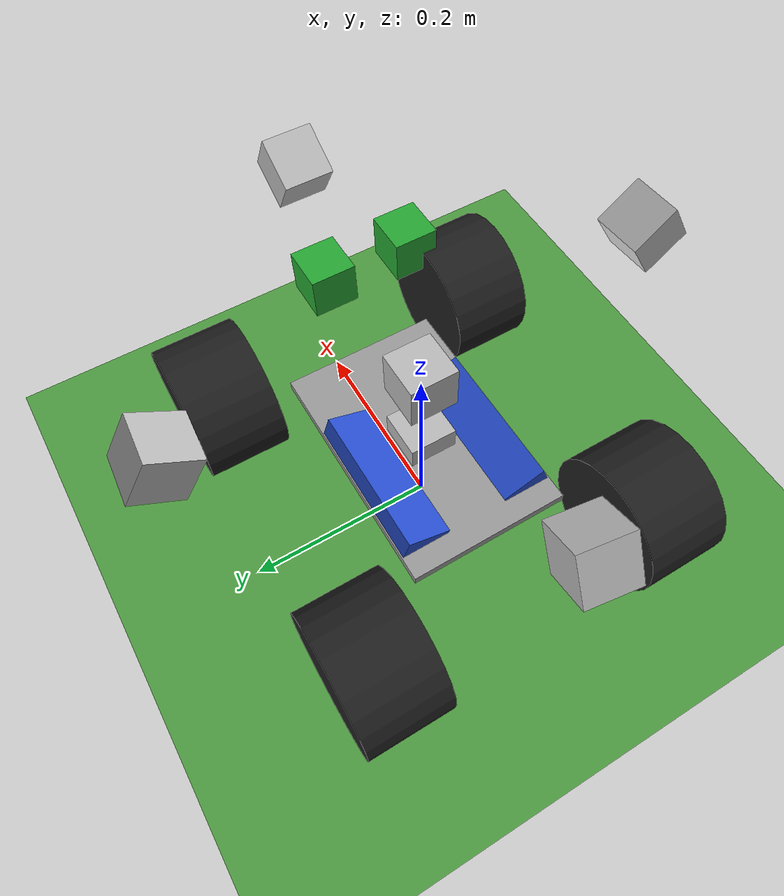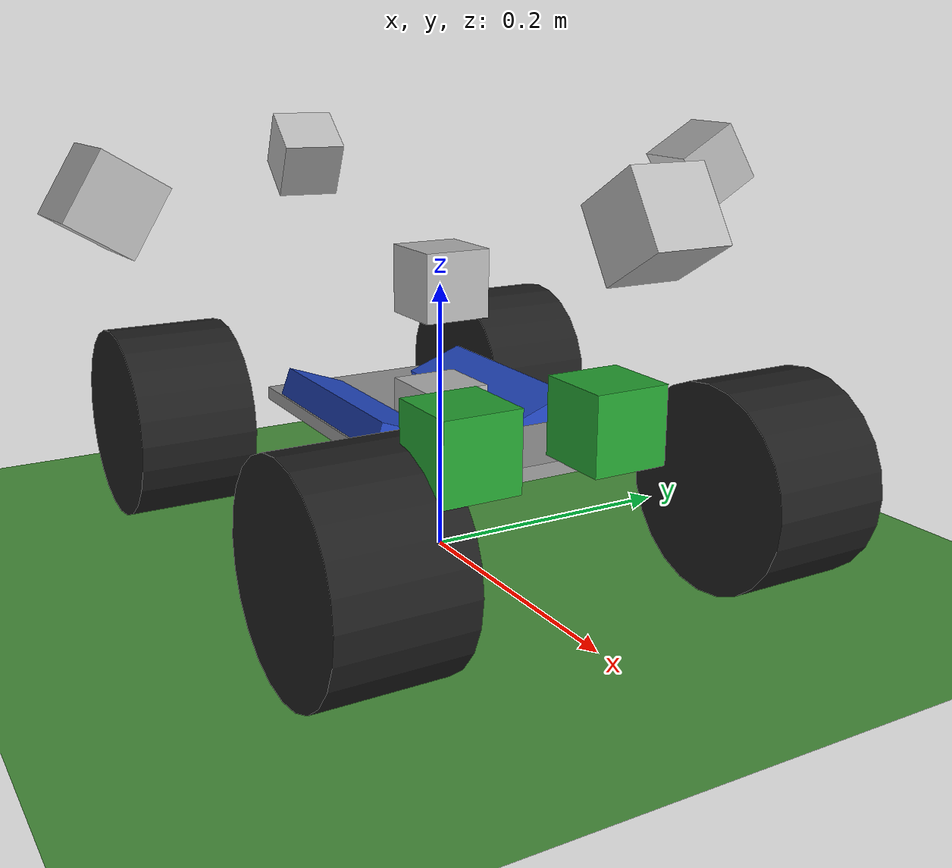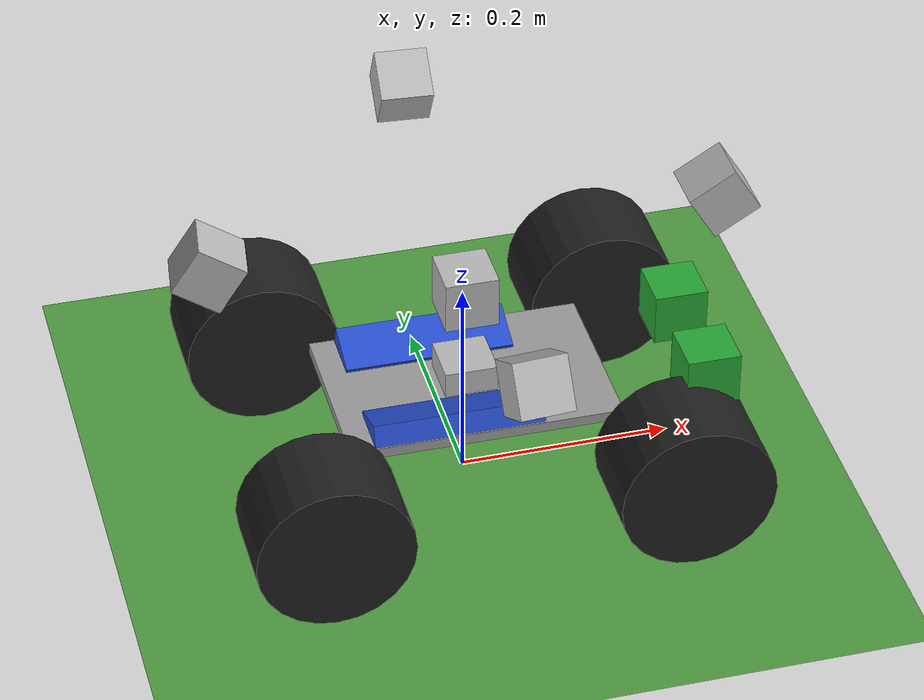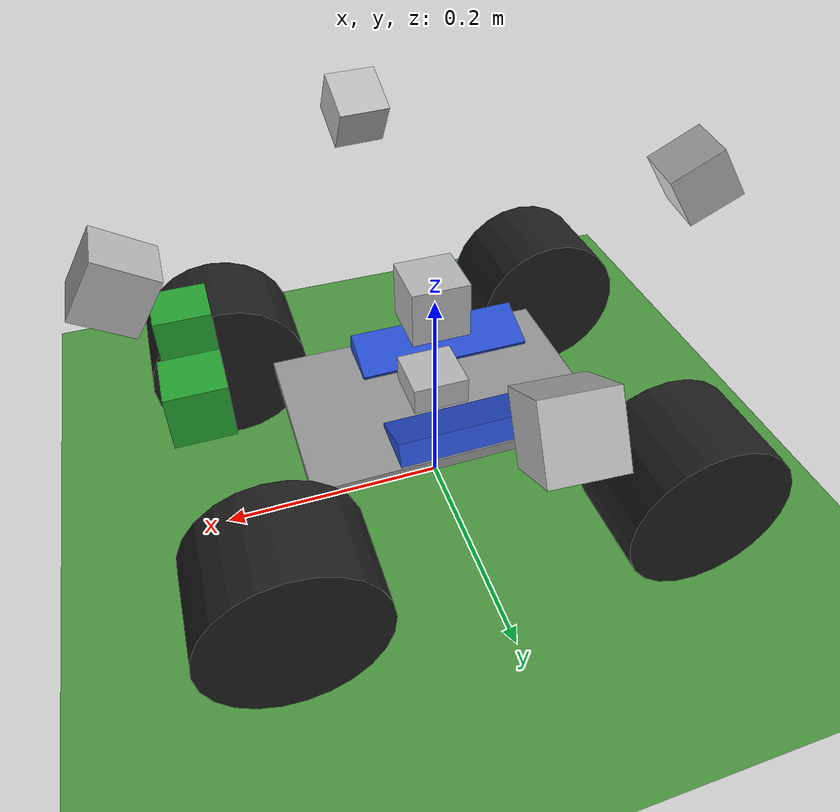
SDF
<sdf version="1.6">
 <world name="racecar_tunnel">
  <light name="sun" type="directional">
   <pose>0 0 10 0 -0 0</pose>
   <diffuse>0.8 0.8 0.8 1</diffuse>
   <specular>0.1 0.1 0.1 1</specular>
   <attenuation>
    <range>1000</range>
    <constant>0.9</constant>
    <linear>0.01</linear>
    <quadratic>0.001</quadratic>
   </attenuation>
   <direction>-0.5 0.5 -1</direction>
  </light>
  <model name="ground_plane">
   <static>1</static>
   <link name="link">
    <collision name="collision">
     <geometry><plane><normal>0 0 1</normal><size>150 150</size></plane></geometry>
     <surface><friction><ode><mu>100</mu><mu2>50</mu2></ode></friction></surface>
    </collision>
    <visual name="visual">
     <cast_shadows>0</cast_shadows>
     <geometry><plane><normal>0 0 1</normal><size>150 150</size></plane></geometry>
     <material>
      <script><uri>file://media/materials/scripts/gazebo.material</uri><name>Gazebo/Grass</name></script>
     </material>
    </visual>
   </link>
  </model>
  <gravity>0 0 -9.8</gravity>
  <magnetic_field>6e-06 2.3e-05 -4.2e-05</magnetic_field>
  <atmosphere type="adiabatic"/>
  <physics name="default_physics" default="0" type="ode">
   <max_step_size>0.001</max_step_size>
   <real_time_factor>1</real_time_factor>
   <real_time_update_rate>1000</real_time_update_rate>
  </physics>
  <scene><ambient>0.4 0.4 0.4 1</ambient><background>0.7 0.7 0.7 1</background><shadows>1</shadows></scene>
  <spherical_coordinates>
   <surface_model>EARTH_WGS84</surface_model>
   <latitude_deg>0</latitude_deg>
   <longitude_deg>0</longitude_deg>
   <elevation>0</elevation>
   <heading_deg>0</heading_deg>
  </spherical_coordinates>
  <model name="roguetwo">
   <link name="base_link">
    <inertial>
     <pose>0.003531 -0.002382 0.001711 0 -0 0</pose>
     <mass>4.199</mass>
     <inertia>
      <ixx>0.0148708</ixx>
      <ixy>0.00196469</ixy>
      <ixz>-0.00196158</ixz>
      <iyy>0.0300503</iyy>
      <iyz>0.000482895</iyz>
      <izz>0.0394467</izz>
     </inertia>
    </inertial>
    <collision name="base_link_fixed_joint_lump__chassis_collision">
     <pose>0 0 -0.005 0 -0 0</pose>
     <geometry><box><size>0.258 0.168 0.01</size></box></geometry>
    </collision>
    <collision name="base_link_fixed_joint_lump__camera_stereo_left_collision_1">
     <pose>0.2 0 0.05 0 -0 0</pose>
     <geometry><box><size>0.05 0.05 0.05</size></box></geometry>
    </collision>
    <collision name="base_link_fixed_joint_lump__camera_stereo_right_collision_2">
     <pose>0.2 -0.1 0.05 0 -0 0</pose>
     <geometry><box><size>0.05 0.05 0.05</size></box></geometry>
    </collision>
    <collision name="base_link_fixed_joint_lump__left_battery_collision_3">
     <pose>-0.025 0.057319 0.00052 0.349066 -0 0</pose>
     <geometry><box><size>0.16 0.047 0.024</size></box></geometry>
    </collision>
    <collision name="base_link_fixed_joint_lump__right_battery_collision_4">
     <pose>-0.025 -0.057319 0.00052 -0.349066 0 0</pose>
     <geometry><box><size>0.16 0.047 0.024</size></box></geometry>
    </collision>
    <collision name="base_link_fixed_joint_lump__gps_collision_5">
     <pose>0 0 0.1 0 -0 0</pose>
     <geometry><box><size>0.05 0.05 0.05</size></box></geometry>
    </collision>
    <collision name="base_link_fixed_joint_lump__imu_collision_6">
     <geometry><box><size>0.05 0.05 0.05</size></box></geometry>
    </collision>
    <collision name="base_link_fixed_joint_lump__sonar1_link_collision_7">
     <pose>0.25 0 0.15 0 -0.55 0</pose>
     <geometry><box><size>0.01 0.01 0.01</size></box></geometry>
    </collision>
    <collision name="base_link_fixed_joint_lump__sonar2_link_collision_8">
     <pose>0 0.25 0.15 0 -0.55 1.5</pose>
     <geometry><box><size>0.01 0.01 0.01</size></box></geometry>
    </collision>
    <collision name="base_link_fixed_joint_lump__sonar3_link_collision_9">
     <pose>0 -0.25 0.15 0 -0.55 -1.5</pose>
     <geometry><box><size>0.01 0.01 0.01</size></box></geometry>
    </collision>
    <collision name="base_link_fixed_joint_lump__sonar4_link_collision_10">
     <pose>-0.25 0 0.15 0 -0.55 3</pose>
     <geometry><box><size>0.01 0.01 0.01</size></box></geometry>
    </collision>
    <visual name="base_link_visual">
     <geometry><box><size>0.01 0.01 0.01</size></box></geometry>
     <material>
      <script><name>Gazebo/Grey</name><uri>file://media/materials/scripts/gazebo.material</uri></script>
     </material>
    </visual>
    <visual name="base_link_fixed_joint_lump__chassis_visual_1">
     <pose>0 0 -0.005 0 -0 0</pose>
     <geometry><box><size>0.258 0.168 0.01</size></box></geometry>
     <material>
      <script><name>Gazebo/Grey</name><uri>file://media/materials/scripts/gazebo.material</uri></script>
     </material>
    </visual>
    <visual name="base_link_fixed_joint_lump__camera_stereo_left_visual_2">
     <pose>0.2 0 0.05 0 -0 0</pose>
     <geometry><box><size>0.05 0.05 0.05</size></box></geometry>
     <material>
      <script><name>Gazebo/Green</name><uri>file://media/materials/scripts/gazebo.material</uri></script>
     </material>
    </visual>
    <visual name="base_link_fixed_joint_lump__camera_stereo_right_visual_3">
     <pose>0.2 -0.1 0.05 0 -0 0</pose>
     <geometry><box><size>0.05 0.05 0.05</size></box></geometry>
     <material>
      <script><name>Gazebo/Green</name><uri>file://media/materials/scripts/gazebo.material</uri></script>
     </material>
    </visual>
    <visual name="base_link_fixed_joint_lump__left_battery_visual_4">
     <pose>-0.025 0.057319 0.00052 0.349066 -0 0</pose>
     <geometry><box><size>0.16 0.047 0.024</size></box></geometry>
     <material>
      <script><name>Gazebo/Blue</name><uri>file://media/materials/scripts/gazebo.material</uri></script>
     </material>
    </visual>
    <visual name="base_link_fixed_joint_lump__right_battery_visual_5">
     <pose>-0.025 -0.057319 0.00052 -0.349066 0 0</pose>
     <geometry><box><size>0.16 0.047 0.024</size></box></geometry>
     <material>
      <script><name>Gazebo/Blue</name><uri>file://media/materials/scripts/gazebo.material</uri></script>
     </material>
    </visual>
    <visual name="base_link_fixed_joint_lump__gps_visual_6">
     <pose>0 0 0.1 0 -0 0</pose>
     <geometry><box><size>0.05 0.05 0.05</size></box></geometry>
    </visual>
    <visual name="base_link_fixed_joint_lump__imu_visual_7">
     <geometry><box><size>0.05 0.05 0.05</size></box></geometry>
    </visual>
    <visual name="base_link_fixed_joint_lump__sonar1_link_visual_8">
     <pose>0.236933 0 0.171313 0 -0.55 0</pose>
     <geometry><box><size>0.05 0.05 0.05</size></box></geometry>
     <material><script><uri>__default__</uri><name>__default__</name></script></material>
    </visual>
    <visual name="base_link_fixed_joint_lump__sonar2_link_visual_9">
     <pose>-0.000924 0.236966 0.171313 0 -0.55 1.5</pose>
     <geometry><box><size>0.05 0.05 0.05</size></box></geometry>
     <material><script><uri>__default__</uri><name>__default__</name></script></material>
    </visual>
    <visual name="base_link_fixed_joint_lump__sonar3_link_visual_10">
     <pose>-0.000924 -0.236966 0.171313 0 -0.55 -1.5</pose>
     <geometry><box><size>0.05 0.05 0.05</size></box></geometry>
     <material><script><uri>__default__</uri><name>__default__</name></script></material>
    </visual>
    <visual name="base_link_fixed_joint_lump__sonar4_link_visual_11">
     <pose>-0.237064 -0.001844 0.171313 0 -0.55 3</pose>
     <geometry><box><size>0.05 0.05 0.05</size></box></geometry>
     <material><script><uri>__default__</uri><name>__default__</name></script></material>
    </visual>
    <sensor name="camera_stereo_left" type="camera">
     <update_rate>30</update_rate>
     <camera name="head">
      <horizontal_fov>1.39626</horizontal_fov>
      <image><width>640</width><height>480</height><format>R8G8B8</format></image>
      <clip><near>0.02</near><far>300</far></clip>
     </camera>
     <plugin name="camera_controller" filename="libgazebo_ros_camera.so">
      <alwaysOn>true</alwaysOn>
      <updateRate>0.0</updateRate>
      <cameraName>rogue_two/camera_stereo_left</cameraName>
      <imageTopicName>image_raw</imageTopicName>
      <cameraInfoTopicName>camera_info</cameraInfoTopicName>
      <frameName>camera</frameName>
      <hackBaseline>0.07</hackBaseline>
      <distortionK1>0.0</distortionK1>
      <distortionK2>0.0</distortionK2>
      <distortionK3>0.0</distortionK3>
      <distortionT1>0.0</distortionT1>
      <distortionT2>0.0</distortionT2>
      <robotNamespace>/</robotNamespace>
     </plugin>
     <pose>0.2 0 0.05 0 -0 0</pose>
    </sensor>
    <sensor name="camera_stereo_right" type="camera">
     <update_rate>30</update_rate>
     <camera name="head">
      <horizontal_fov>1.39626</horizontal_fov>
      <image><width>640</width><height>480</height><format>R8G8B8</format></image>
      <clip><near>0.02</near><far>300</far></clip>
     </camera>
     <plugin name="camera_controller" filename="libgazebo_ros_camera.so">
      <alwaysOn>true</alwaysOn>
      <updateRate>0.0</updateRate>
      <cameraName>rogue_two/camera_stereo_right</cameraName>
      <imageTopicName>image_raw</imageTopicName>
      <cameraInfoTopicName>camera_info</cameraInfoTopicName>
      <frameName>camera</frameName>
      <hackBaseline>0.07</hackBaseline>
      <distortionK1>0.0</distortionK1>
      <distortionK2>0.0</distortionK2>
      <distortionK3>0.0</distortionK3>
      <distortionT1>0.0</distortionT1>
      <distortionT2>0.0</distortionT2>
      <robotNamespace>/</robotNamespace>
     </plugin>
     <pose>0.2 -0.1 0.05 0 -0 0</pose>
    </sensor>
    <sensor name="sonar1" type="ray">
     <always_on>1</always_on>
     <update_rate>10</update_rate>
     <visualize>1</visualize>
     <ray>
      <scan>
       <horizontal>
        <samples>2</samples>
        <resolution>1</resolution>
        <min_angle>-0.5</min_angle>
        <max_angle>0.5</max_angle>
       </horizontal>
       <vertical>
        <samples>2</samples>
        <resolution>1</resolution>
        <min_angle>-0.5</min_angle>
        <max_angle>0.5</max_angle>
       </vertical>
      </scan>
      <range><min>0.02</min><max>4.5</max><resolution>0.01</resolution></range>
     </ray>
     <plugin name="gazebo_ros_sonar1_controller" filename="libhector_gazebo_ros_sonar.so">
      <gaussianNoise>0.005</gaussianNoise>
      <topicName>/sonar_front_distance</topicName>
      <frameId>sonar1_link</frameId>
      <robotNamespace>/</robotNamespace>
     </plugin>
     <pose>0.25 0 0.15 0 -0.55 0</pose>
    </sensor>
    <sensor name="sonar2" type="ray">
     <always_on>1</always_on>
     <update_rate>10</update_rate>
     <visualize>1</visualize>
     <ray>
      <scan>
       <horizontal>
        <samples>2</samples>
        <resolution>1</resolution>
        <min_angle>-0.5</min_angle>
        <max_angle>0.5</max_angle>
       </horizontal>
       <vertical>
        <samples>2</samples>
        <resolution>1</resolution>
        <min_angle>-0.5</min_angle>
        <max_angle>0.5</max_angle>
       </vertical>
      </scan>
      <range><min>0.02</min><max>4.5</max><resolution>0.01</resolution></range>
     </ray>
     <plugin name="gazebo_ros_sonar2_controller" filename="libhector_gazebo_ros_sonar.so">
      <gaussianNoise>0.005</gaussianNoise>
      <topicName>/sonar_left_distance</topicName>
      <bodyName>sonar</bodyName>
      <serviceName>sonar_service</serviceName>
      <frameId>sonar2_link</frameId>
      <robotNamespace>/</robotNamespace>
     </plugin>
     <pose>0 0.25 0.15 0 -0.55 1.5</pose>
    </sensor>
    <sensor name="sonar3" type="ray">
     <always_on>1</always_on>
     <update_rate>10</update_rate>
     <visualize>1</visualize>
     <ray>
      <scan>
       <horizontal>
        <samples>2</samples>
        <resolution>1</resolution>
        <min_angle>-0.5</min_angle>
        <max_angle>0.5</max_angle>
       </horizontal>
       <vertical>
        <samples>2</samples>
        <resolution>1</resolution>
        <min_angle>-0.5</min_angle>
        <max_angle>0.5</max_angle>
       </vertical>
      </scan>
      <range><min>0.02</min><max>4.5</max><resolution>0.01</resolution></range>
     </ray>
     <plugin name="gazebo_ros_sonar3_controller" filename="libhector_gazebo_ros_sonar.so">
      <gaussianNoise>0.005</gaussianNoise>
      <topicName>/sonar_right_distance</topicName>
      <bodyName>sonar</bodyName>
      <serviceName>sonar_service</serviceName>
      <frameId>sonar3_link</frameId>
      <robotNamespace>/</robotNamespace>
     </plugin>
     <pose>0 -0.25 0.15 0 -0.55 -1.5</pose>
    </sensor>
    <sensor name="sonar4" type="ray">
     <always_on>1</always_on>
     <update_rate>10</update_rate>
     <visualize>1</visualize>
     <ray>
      <scan>
       <horizontal>
        <samples>2</samples>
        <resolution>1</resolution>
        <min_angle>-0.5</min_angle>
        <max_angle>0.5</max_angle>
       </horizontal>
       <vertical>
        <samples>2</samples>
        <resolution>1</resolution>
        <min_angle>-0.5</min_angle>
        <max_angle>0.5</max_angle>
       </vertical>
      </scan>
      <range><min>0.02</min><max>4.5</max><resolution>0.01</resolution></range>
     </ray>
     <plugin name="gazebo_ros_sonar4_controller" filename="libhector_gazebo_ros_sonar.so">
      <gaussianNoise>0.005</gaussianNoise>
      <topicName>/sonar_back_distance</topicName>
      <bodyName>sonar</bodyName>
      <serviceName>sonar_service</serviceName>
      <frameId>sonar4_link</frameId>
      <robotNamespace>/</robotNamespace>
     </plugin>
     <pose>-0.25 0 0.15 0 -0.55 3</pose>
    </sensor>
   </link>
   <link name="left_steering_link">
    <pose>0.1675 0.1525 -0.0235 0 -0 0</pose>
    <inertial>
     <mass>0.001</mass>
     <inertia><ixx>0.001</ixx><ixy>0</ixy><ixz>0</ixz><iyy>0.001</iyy><iyz>0</iyz><izz>0.001</izz></inertia>
    </inertial>
   </link>
   <joint name="left_front_shock" type="prismatic">
    <child>left_steering_link</child>
    <parent>base_link</parent>
    <axis>
     <xyz>0 0 -1</xyz>
     <limit><lower>-0.042</lower><upper>0.042</upper><effort>12.5106</effort><velocity>1000</velocity></limit>
     <dynamics><spring_reference>0</spring_reference><spring_stiffness>0</spring_stiffness></dynamics>
     <use_parent_model_frame>1</use_parent_model_frame>
    </axis>
   </joint>
   <link name="left_front_axle_carrier">
    <pose>0.1675 0.1525 -0.0235 0 -0 0</pose>
    <inertial>
     <mass>0.001</mass>
     <inertia><ixx>0.001</ixx><ixy>0</ixy><ixz>0</ixz><iyy>0.001</iyy><iyz>0</iyz><izz>0.001</izz></inertia>
    </inertial>
   </link>
   <joint name="left_steering_joint" type="revolute">
    <child>left_front_axle_carrier</child>
    <parent>left_steering_link</parent>
    <axis>
     <xyz>0 0 1</xyz>
     <limit>
      <lower>-0.785398</lower>
      <upper>0.785398</upper>
      <effort>0.5649</effort>
      <velocity>4.553</velocity>
     </limit>
     <dynamics><spring_reference>0</spring_reference><spring_stiffness>0</spring_stiffness></dynamics>
     <use_parent_model_frame>1</use_parent_model_frame>
    </axis>
   </joint>
   <link name="left_front_wheel">
    <pose>0.1675 0.1525 -0.0235 1.5708 -0 0</pose>
    <inertial>
     <mass>0.29</mass>
     <inertia>
      <ixx>0.000746466</ixx>
      <ixy>0</ixy>
      <ixz>0</ixz>
      <iyy>0.000746466</iyy>
      <iyz>0</iyz>
      <izz>0.00111094</izz>
     </inertia>
    </inertial>
    <collision name="left_front_wheel_collision">
     <geometry><cylinder><length>0.0889</length><radius>0.073025</radius></cylinder></geometry>
    </collision>
    <visual name="left_front_wheel_visual">
     <geometry><cylinder><length>0.0889</length><radius>0.073025</radius></cylinder></geometry>
     <material>
      <script><name>Gazebo/Black</name><uri>file://media/materials/scripts/gazebo.material</uri></script>
     </material>
    </visual>
   </link>
   <joint name="left_front_axle" type="revolute">
    <child>left_front_wheel</child>
    <parent>left_front_axle_carrier</parent>
    <axis>
     <xyz>0 1 0</xyz>
     <limit><lower>-1e+16</lower><upper>1e+16</upper></limit>
     <dynamics><spring_reference>0</spring_reference><spring_stiffness>0</spring_stiffness></dynamics>
     <use_parent_model_frame>1</use_parent_model_frame>
    </axis>
   </joint>
   <link name="left_rear_axle_carrier">
    <pose>-0.1675 0.1525 -0.0235 0 -0 0</pose>
    <inertial>
     <mass>0.001</mass>
     <inertia><ixx>0.001</ixx><ixy>0</ixy><ixz>0</ixz><iyy>0.001</iyy><iyz>0</iyz><izz>0.001</izz></inertia>
    </inertial>
   </link>
   <joint name="left_rear_shock" type="prismatic">
    <child>left_rear_axle_carrier</child>
    <parent>base_link</parent>
    <axis>
     <xyz>0 0 -1</xyz>
     <limit><lower>-0.042</lower><upper>0.042</upper><effort>12.5106</effort><velocity>1000</velocity></limit>
     <dynamics><spring_reference>0</spring_reference><spring_stiffness>0</spring_stiffness></dynamics>
     <use_parent_model_frame>1</use_parent_model_frame>
    </axis>
   </joint>
   <link name="left_rear_wheel">
    <pose>-0.1675 0.1525 -0.0235 1.5708 -0 0</pose>
    <inertial>
     <mass>0.29</mass>
     <inertia>
      <ixx>0.000746466</ixx>
      <ixy>0</ixy>
      <ixz>0</ixz>
      <iyy>0.000746466</iyy>
      <iyz>0</iyz>
      <izz>0.00111094</izz>
     </inertia>
    </inertial>
    <collision name="left_rear_wheel_collision">
     <geometry><cylinder><length>0.0889</length><radius>0.073025</radius></cylinder></geometry>
    </collision>
    <visual name="left_rear_wheel_visual">
     <geometry><cylinder><length>0.0889</length><radius>0.073025</radius></cylinder></geometry>
     <material>
      <script><name>Gazebo/Black</name><uri>file://media/materials/scripts/gazebo.material</uri></script>
     </material>
    </visual>
   </link>
   <joint name="left_rear_axle" type="revolute">
    <child>left_rear_wheel</child>
    <parent>left_rear_axle_carrier</parent>
    <axis>
     <xyz>0 1 0</xyz>
     <limit><lower>-1e+16</lower><upper>1e+16</upper></limit>
     <dynamics><spring_reference>0</spring_reference><spring_stiffness>0</spring_stiffness></dynamics>
     <use_parent_model_frame>1</use_parent_model_frame>
    </axis>
   </joint>
   <link name="right_steering_link">
    <pose>0.1675 -0.1525 -0.0235 0 -0 0</pose>
    <inertial>
     <mass>0.001</mass>
     <inertia><ixx>0.001</ixx><ixy>0</ixy><ixz>0</ixz><iyy>0.001</iyy><iyz>0</iyz><izz>0.001</izz></inertia>
    </inertial>
   </link>
   <joint name="right_front_shock" type="prismatic">
    <child>right_steering_link</child>
    <parent>base_link</parent>
    <axis>
     <xyz>0 0 -1</xyz>
     <limit><lower>-0.042</lower><upper>0.042</upper><effort>12.5106</effort><velocity>1000</velocity></limit>
     <dynamics><spring_reference>0</spring_reference><spring_stiffness>0</spring_stiffness></dynamics>
     <use_parent_model_frame>1</use_parent_model_frame>
    </axis>
   </joint>
   <link name="right_front_axle_carrier">
    <pose>0.1675 -0.1525 -0.0235 0 -0 0</pose>
    <inertial>
     <mass>0.001</mass>
     <inertia><ixx>0.001</ixx><ixy>0</ixy><ixz>0</ixz><iyy>0.001</iyy><iyz>0</iyz><izz>0.001</izz></inertia>
    </inertial>
   </link>
   <joint name="right_steering_joint" type="revolute">
    <child>right_front_axle_carrier</child>
    <parent>right_steering_link</parent>
    <axis>
     <xyz>0 0 1</xyz>
     <limit>
      <lower>-0.785398</lower>
      <upper>0.785398</upper>
      <effort>0.5649</effort>
      <velocity>4.553</velocity>
     </limit>
     <dynamics><spring_reference>0</spring_reference><spring_stiffness>0</spring_stiffness></dynamics>
     <use_parent_model_frame>1</use_parent_model_frame>
    </axis>
   </joint>
   <link name="right_front_wheel">
    <pose>0.1675 -0.1525 -0.0235 1.5708 -0 0</pose>
    <inertial>
     <mass>0.29</mass>
     <inertia>
      <ixx>0.000746466</ixx>
      <ixy>0</ixy>
      <ixz>0</ixz>
      <iyy>0.000746466</iyy>
      <iyz>0</iyz>
      <izz>0.00111094</izz>
     </inertia>
    </inertial>
    <collision name="right_front_wheel_collision">
     <geometry><cylinder><length>0.0889</length><radius>0.073025</radius></cylinder></geometry>
    </collision>
    <visual name="right_front_wheel_visual">
     <geometry><cylinder><length>0.0889</length><radius>0.073025</radius></cylinder></geometry>
     <material>
      <script><name>Gazebo/Black</name><uri>file://media/materials/scripts/gazebo.material</uri></script>
     </material>
    </visual>
   </link>
   <joint name="right_front_axle" type="revolute">
    <child>right_front_wheel</child>
    <parent>right_front_axle_carrier</parent>
    <axis>
     <xyz>0 1 0</xyz>
     <limit><lower>-1e+16</lower><upper>1e+16</upper></limit>
     <dynamics><spring_reference>0</spring_reference><spring_stiffness>0</spring_stiffness></dynamics>
     <use_parent_model_frame>1</use_parent_model_frame>
    </axis>
   </joint>
   <link name="right_rear_axle_carrier">
    <pose>-0.1675 -0.1525 -0.0235 0 -0 0</pose>
    <inertial>
     <mass>0.001</mass>
     <inertia><ixx>0.001</ixx><ixy>0</ixy><ixz>0</ixz><iyy>0.001</iyy><iyz>0</iyz><izz>0.001</izz></inertia>
    </inertial>
   </link>
   <joint name="right_rear_shock" type="prismatic">
    <child>right_rear_axle_carrier</child>
    <parent>base_link</parent>
    <axis>
     <xyz>0 0 -1</xyz>
     <limit><lower>-0.042</lower><upper>0.042</upper><effort>12.5106</effort><velocity>1000</velocity></limit>
     <dynamics><spring_reference>0</spring_reference><spring_stiffness>0</spring_stiffness></dynamics>
     <use_parent_model_frame>1</use_parent_model_frame>
    </axis>
   </joint>
   <link name="right_rear_wheel">
    <pose>-0.1675 -0.1525 -0.0235 1.5708 -0 0</pose>
    <inertial>
     <mass>0.29</mass>
     <inertia>
      <ixx>0.000746466</ixx>
      <ixy>0</ixy>
      <ixz>0</ixz>
      <iyy>0.000746466</iyy>
      <iyz>0</iyz>
      <izz>0.00111094</izz>
     </inertia>
    </inertial>
    <collision name="right_rear_wheel_collision">
     <geometry><cylinder><length>0.0889</length><radius>0.073025</radius></cylinder></geometry>
    </collision>
    <visual name="right_rear_wheel_visual">
     <geometry><cylinder><length>0.0889</length><radius>0.073025</radius></cylinder></geometry>
     <material>
      <script><name>Gazebo/Black</name><uri>file://media/materials/scripts/gazebo.material</uri></script>
     </material>
    </visual>
   </link>
   <joint name="right_rear_axle" type="revolute">
    <child>right_rear_wheel</child>
    <parent>right_rear_axle_carrier</parent>
    <axis>
     <xyz>0 1 0</xyz>
     <limit><lower>-1e+16</lower><upper>1e+16</upper></limit>
     <dynamics><spring_reference>0</spring_reference><spring_stiffness>0</spring_stiffness></dynamics>
     <use_parent_model_frame>1</use_parent_model_frame>
    </axis>
   </joint>
   <plugin name="gazebo_ros_gps" filename="libhector_gazebo_ros_gps.so">
    <updateRate>4.0</updateRate>
    <frameId>gps</frameId>
    <topicName>/gps/fix</topicName>
    <velocityTopicName>/gps/fix_velocity</velocityTopicName>
    <referenceLatitude>-30.06022459407145675</referenceLatitude>
    <referenceLongitude>-51.173913575780311191</referenceLongitude>
    <referenceHeading>90</referenceHeading>
    <referenceAltitude>10</referenceAltitude>
    <offset>0 0 0</offset>
    <drift>0.001 0.001 0.001</drift>
    <gaussianNoise>0.05 0.05 0.05</gaussianNoise>
    <velocityDrift>0.001 0.001 0.001</velocityDrift>
    <velocityGaussianNoise>0.5 0.5 0.5</velocityGaussianNoise>
    <robotNamespace>/</robotNamespace>
    <bodyName>base_link</bodyName>
    <xyzOffset>0 0 -0.1</xyzOffset>
    <rpyOffset>0 -0 0</rpyOffset>
   </plugin>
   <plugin name="imu_plugin" filename="libgazebo_ros_imu.so">
    <alwaysOn>true</alwaysOn>
    <topicName>imu</topicName>
    <serviceName>imu_service</serviceName>
    <gaussianNoise>0.005</gaussianNoise>
    <updateRate>20.0</updateRate>
    <robotNamespace>/</robotNamespace>
    <bodyName>base_link</bodyName>
    <xyzOffset>0 0 0</xyzOffset>
    <rpyOffset>0 -0 0</rpyOffset>
   </plugin>
   <static>0</static>
   <plugin name="gazebo_ros_control" filename="libgazebo_ros_control.so">
    <robotNamespace>/</robotNamespace>
   </plugin>
   <pose>0.002004 -0.001117 0.10327 4.6e-05 0.00642 0.000712</pose>
  </model>
 </world>
</sdf>
